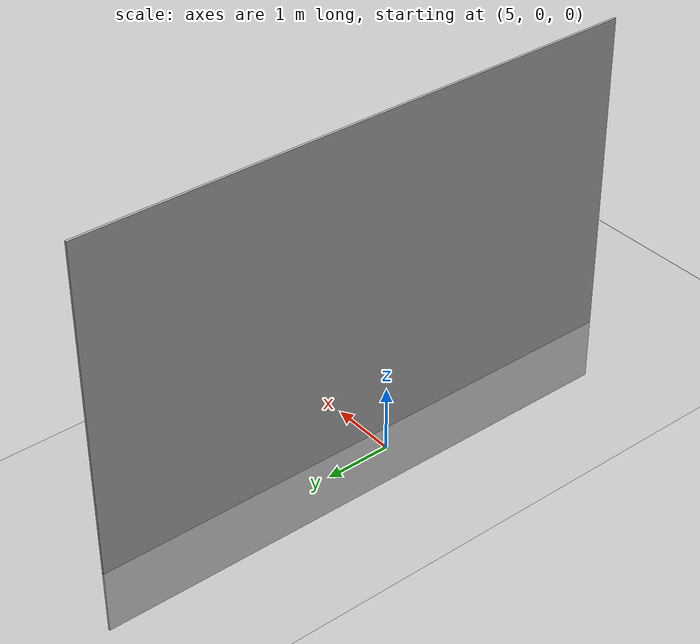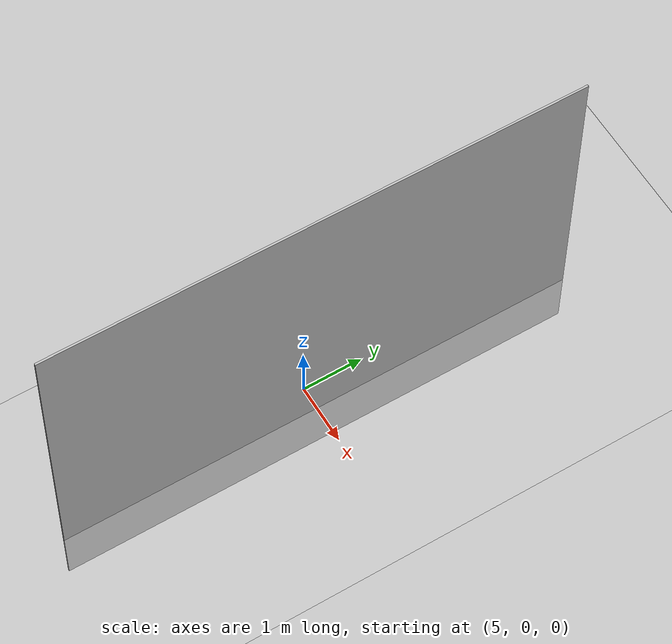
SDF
<sdf version="1.6">
 <world name="default">
  <light name="sun" type="directional">
   <pose>0 0 10 0 -0 0</pose>
   <diffuse>0.8 0.8 0.8 1</diffuse>
   <specular>0.2 0.2 0.2 1</specular>
   <attenuation>
    <range>1000</range>
    <constant>0.9</constant>
    <linear>0.01</linear>
    <quadratic>0.001</quadratic>
   </attenuation>
   <direction>-0.5 0.1 -0.9</direction>
  </light>
  <model name="ground_plane">
   <static>1</static>
   <link name="link">
    <collision name="collision">
     <geometry><plane><normal>0 0 1</normal><size>100 100</size></plane></geometry>
     <surface>
      <contact><collide_bitmask>65535</collide_bitmask></contact>
      <friction><ode><mu>100</mu><mu2>50</mu2></ode></friction>
     </surface>
    </collision>
    <visual name="visual">
     <cast_shadows>0</cast_shadows>
     <geometry><plane><normal>0 0 1</normal><size>100 100</size></plane></geometry>
     <material>
      <script><uri>file://media/materials/scripts/gazebo.material</uri><name>Gazebo/Grey</name></script>
     </material>
    </visual>
   </link>
  </model>
  <gravity>0 0 -9.8</gravity>
  <magnetic_field>6e-06 2.3e-05 -4.2e-05</magnetic_field>
  <atmosphere type="adiabatic"/>
  <physics name="default_physics" default="0" type="ode">
   <max_step_size>0.001</max_step_size>
   <real_time_factor>1</real_time_factor>
   <real_time_update_rate>1000</real_time_update_rate>
  </physics>
  <scene><ambient>0.4 0.4 0.4 1</ambient><background>0.7 0.7 0.7 1</background><shadows>1</shadows></scene>
  <audio><device>default</device></audio>
  <spherical_coordinates>
   <surface_model>EARTH_WGS84</surface_model>
   <latitude_deg>0</latitude_deg>
   <longitude_deg>0</longitude_deg>
   <elevation>0</elevation>
   <heading_deg>0</heading_deg>
  </spherical_coordinates>
  <model name="cathedral_background">
   <pose>5.34048 0.054663 1 0 -0 3.13879</pose>
   <static>1</static>
   <link name="cathedral_background">
    <inertial>
     <pose>0 0 1 0 -0 0</pose>
     <mass>20</mass>
     <inertia>
      <ixx>0.00055575</ixx>
      <ixy>0</ixy>
      <ixz>0</ixz>
      <iyy>0.00055575</iyy>
      <iyz>0</iyz>
      <izz>0.0001755</izz>
     </inertia>
    </inertial>
    <collision name="collision">
     <pose>0 0 1 0 -0 0</pose>
     <geometry><mesh><uri>model://cathedral_background/meshes/cathedral_background.dae</uri></mesh></geometry>
     <surface>
      <friction><ode><mu>1</mu><mu2>1</mu2></ode></friction>
      <contact><ode><kp>1e+07</kp><kd>1</kd><min_depth>0.001</min_depth><max_vel>0.1</max_vel></ode></contact>
     </surface>
    </collision>
    <visual name="visual">
     <pose>0 0 1 0 -0 0</pose>
     <geometry><mesh><uri>model://cathedral_background/meshes/cathedral_background.dae</uri></mesh></geometry>
    </visual>
   </link>
  </model>
 </world>
</sdf>
